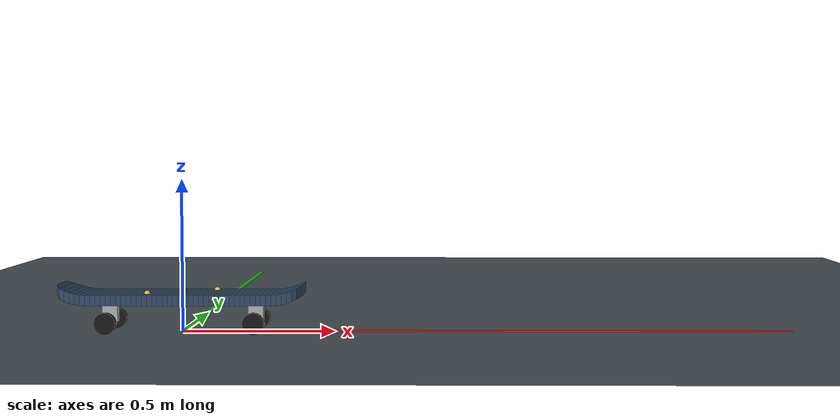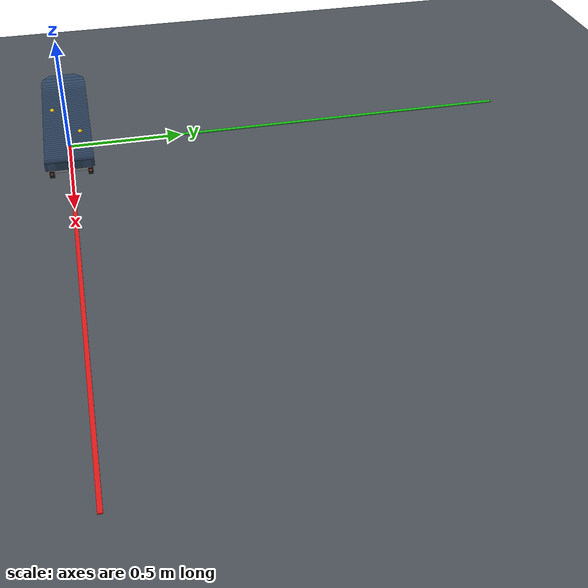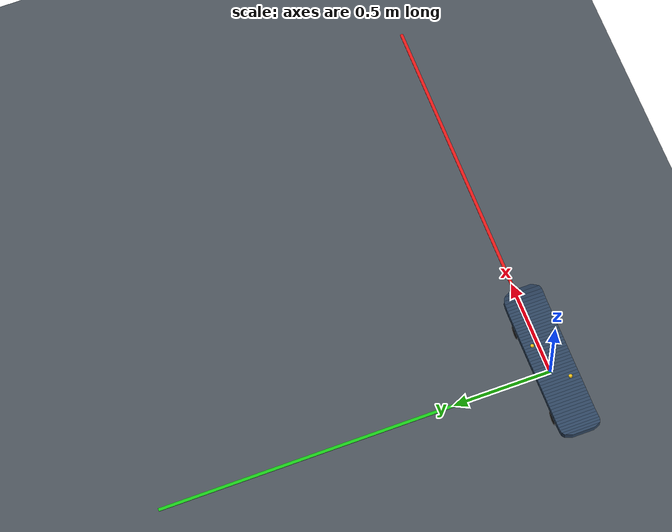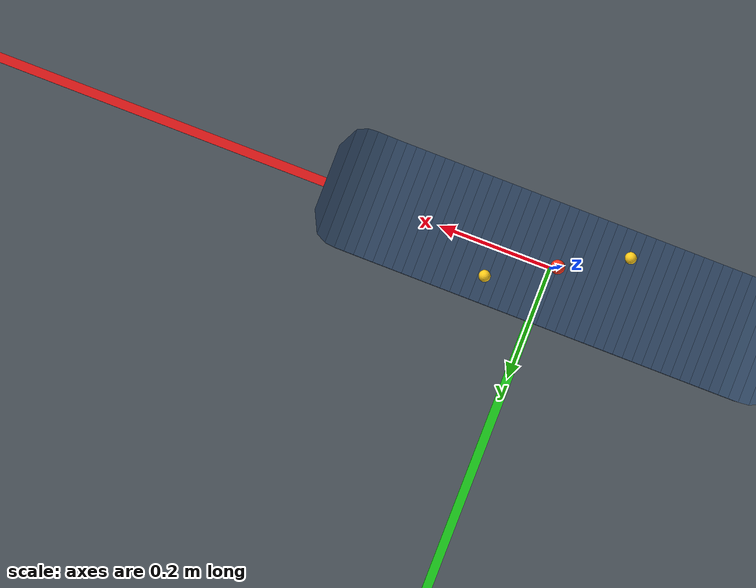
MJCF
<mujoco model="skate-sim-board-standard-truck">
      <compiler angle="radian" coordinate="local"/>
      <option gravity="0 0 -9.81" integrator="implicitfast" timestep=".002"/>
      <visual><headlight diffuse=".8 .8 .8" ambient=".35 .35 .35"/></visual>
      <asset>
        <mesh name="deck_strip_0" vertex="-0.4 -0.0550000011 0.0125 -0.4 -0.0550000011 0.0475 -0.4 0.0550000011 0.0125 -0.4 0.0550000011 0.0475 -0.383333333 -0.0899602949 0.00333333333 -0.383333333 -0.0899602949 0.0383333333 -0.383333333 0.0899602949 0.00333333333 -0.383333333 0.0899602949 0.0383333333"/><mesh name="deck_strip_1" vertex="-0.383333333 -0.0899602949 0.00333333333 -0.383333333 -0.0899602949 0.0383333333 -0.383333333 0.0899602949 0.00333333333 -0.383333333 0.0899602949 0.0383333333 -0.366666667 -0.0984613494 -0.00416666667 -0.366666667 -0.0984613494 0.0308333333 -0.366666667 0.0984613494 -0.00416666667 -0.366666667 0.0984613494 0.0308333333"/><mesh name="deck_strip_2" vertex="-0.366666667 -0.0984613494 -0.00416666667 -0.366666667 -0.0984613494 0.0308333333 -0.366666667 0.0984613494 -0.00416666667 -0.366666667 0.0984613494 0.0308333333 -0.35 -0.1 -0.01 -0.35 -0.1 0.025 -0.35 0.1 -0.01 -0.35 0.1 0.025"/><mesh name="deck_strip_3" vertex="-0.35 -0.1 -0.01 -0.35 -0.1 0.025 -0.35 0.1 -0.01 -0.35 0.1 0.025 -0.333333333 -0.1 -0.0141666667 -0.333333333 -0.1 0.0208333333 -0.333333333 0.1 -0.0141666667 -0.333333333 0.1 0.0208333333"/><mesh name="deck_strip_4" vertex="-0.333333333 -0.1 -0.0141666667 -0.333333333 -0.1 0.0208333333 -0.333333333 0.1 -0.0141666667 -0.333333333 0.1 0.0208333333 -0.316666667 -0.1 -0.0166666667 -0.316666667 -0.1 0.0183333333 -0.316666667 0.1 -0.0166666667 -0.316666667 0.1 0.0183333333"/><mesh name="deck_strip_5" vertex="-0.316666667 -0.1 -0.0166666667 -0.316666667 -0.1 0.0183333333 -0.316666667 0.1 -0.0166666667 -0.316666667 0.1 0.0183333333 -0.3 -0.1 -0.0175 -0.3 -0.1 0.0175 -0.3 0.1 -0.0175 -0.3 0.1 0.0175"/><mesh name="deck_strip_6" vertex="-0.3 -0.1 -0.0175 -0.3 -0.1 0.0175 -0.3 0.1 -0.0175 -0.3 0.1 0.0175 -0.283333333 -0.1 -0.0175 -0.283333333 -0.1 0.0175 -0.283333333 0.1 -0.0175 -0.283333333 0.1 0.0175"/><mesh name="deck_strip_7" vertex="-0.283333333 -0.1 -0.0175 -0.283333333 -0.1 0.0175 -0.283333333 0.1 -0.0175 -0.283333333 0.1 0.0175 -0.266666667 -0.1 -0.0175 -0.266666667 -0.1 0.0175 -0.266666667 0.1 -0.0175 -0.266666667 0.1 0.0175"/><mesh name="deck_strip_8" vertex="-0.266666667 -0.1 -0.0175 -0.266666667 -0.1 0.0175 -0.266666667 0.1 -0.0175 -0.266666667 0.1 0.0175 -0.25 -0.1 -0.0175 -0.25 -0.1 0.0175 -0.25 0.1 -0.0175 -0.25 0.1 0.0175"/><mesh name="deck_strip_9" vertex="-0.25 -0.1 -0.0175 -0.25 -0.1 0.0175 -0.25 0.1 -0.0175 -0.25 0.1 0.0175 -0.233333333 -0.1 -0.0175 -0.233333333 -0.1 0.0175 -0.233333333 0.1 -0.0175 -0.233333333 0.1 0.0175"/><mesh name="deck_strip_10" vertex="-0.233333333 -0.1 -0.0175 -0.233333333 -0.1 0.0175 -0.233333333 0.1 -0.0175 -0.233333333 0.1 0.0175 -0.216666667 -0.1 -0.0175 -0.216666667 -0.1 0.0175 -0.216666667 0.1 -0.0175 -0.216666667 0.1 0.0175"/><mesh name="deck_strip_11" vertex="-0.216666667 -0.1 -0.0175 -0.216666667 -0.1 0.0175 -0.216666667 0.1 -0.0175 -0.216666667 0.1 0.0175 -0.2 -0.1 -0.0175 -0.2 -0.1 0.0175 -0.2 0.1 -0.0175 -0.2 0.1 0.0175"/><mesh name="deck_strip_12" vertex="-0.2 -0.1 -0.0175 -0.2 -0.1 0.0175 -0.2 0.1 -0.0175 -0.2 0.1 0.0175 -0.183333333 -0.1 -0.0175 -0.183333333 -0.1 0.0175 -0.183333333 0.1 -0.0175 -0.183333333 0.1 0.0175"/><mesh name="deck_strip_13" vertex="-0.183333333 -0.1 -0.0175 -0.183333333 -0.1 0.0175 -0.183333333 0.1 -0.0175 -0.183333333 0.1 0.0175 -0.166666667 -0.1 -0.0175 -0.166666667 -0.1 0.0175 -0.166666667 0.1 -0.0175 -0.166666667 0.1 0.0175"/><mesh name="deck_strip_14" vertex="-0.166666667 -0.1 -0.0175 -0.166666667 -0.1 0.0175 -0.166666667 0.1 -0.0175 -0.166666667 0.1 0.0175 -0.15 -0.1 -0.0175 -0.15 -0.1 0.0175 -0.15 0.1 -0.0175 -0.15 0.1 0.0175"/><mesh name="deck_strip_15" vertex="-0.15 -0.1 -0.0175 -0.15 -0.1 0.0175 -0.15 0.1 -0.0175 -0.15 0.1 0.0175 -0.133333333 -0.1 -0.0175 -0.133333333 -0.1 0.0175 -0.133333333 0.1 -0.0175 -0.133333333 0.1 0.0175"/><mesh name="deck_strip_16" vertex="-0.133333333 -0.1 -0.0175 -0.133333333 -0.1 0.0175 -0.133333333 0.1 -0.0175 -0.133333333 0.1 0.0175 -0.116666667 -0.1 -0.0175 -0.116666667 -0.1 0.0175 -0.116666667 0.1 -0.0175 -0.116666667 0.1 0.0175"/><mesh name="deck_strip_17" vertex="-0.116666667 -0.1 -0.0175 -0.116666667 -0.1 0.0175 -0.116666667 0.1 -0.0175 -0.116666667 0.1 0.0175 -0.1 -0.1 -0.0175 -0.1 -0.1 0.0175 -0.1 0.1 -0.0175 -0.1 0.1 0.0175"/><mesh name="deck_strip_18" vertex="-0.1 -0.1 -0.0175 -0.1 -0.1 0.0175 -0.1 0.1 -0.0175 -0.1 0.1 0.0175 -0.0833333333 -0.1 -0.0175 -0.0833333333 -0.1 0.0175 -0.0833333333 0.1 -0.0175 -0.0833333333 0.1 0.0175"/><mesh name="deck_strip_19" vertex="-0.0833333333 -0.1 -0.0175 -0.0833333333 -0.1 0.0175 -0.0833333333 0.1 -0.0175 -0.0833333333 0.1 0.0175 -0.0666666667 -0.1 -0.0175 -0.0666666667 -0.1 0.0175 -0.0666666667 0.1 -0.0175 -0.0666666667 0.1 0.0175"/><mesh name="deck_strip_20" vertex="-0.0666666667 -0.1 -0.0175 -0.0666666667 -0.1 0.0175 -0.0666666667 0.1 -0.0175 -0.0666666667 0.1 0.0175 -0.05 -0.1 -0.0175 -0.05 -0.1 0.0175 -0.05 0.1 -0.0175 -0.05 0.1 0.0175"/><mesh name="deck_strip_21" vertex="-0.05 -0.1 -0.0175 -0.05 -0.1 0.0175 -0.05 0.1 -0.0175 -0.05 0.1 0.0175 -0.0333333333 -0.1 -0.0175 -0.0333333333 -0.1 0.0175 -0.0333333333 0.1 -0.0175 -0.0333333333 0.1 0.0175"/><mesh name="deck_strip_22" vertex="-0.0333333333 -0.1 -0.0175 -0.0333333333 -0.1 0.0175 -0.0333333333 0.1 -0.0175 -0.0333333333 0.1 0.0175 -0.0166666667 -0.1 -0.0175 -0.0166666667 -0.1 0.0175 -0.0166666667 0.1 -0.0175 -0.0166666667 0.1 0.0175"/><mesh name="deck_strip_23" vertex="-0.0166666667 -0.1 -0.0175 -0.0166666667 -0.1 0.0175 -0.0166666667 0.1 -0.0175 -0.0166666667 0.1 0.0175 5.55111512e-17 -0.1 -0.0175 5.55111512e-17 -0.1 0.0175 5.55111512e-17 0.1 -0.0175 5.55111512e-17 0.1 0.0175"/><mesh name="deck_strip_24" vertex="5.55111512e-17 -0.1 -0.0175 5.55111512e-17 -0.1 0.0175 5.55111512e-17 0.1 -0.0175 5.55111512e-17 0.1 0.0175 0.0166666667 -0.1 -0.0175 0.0166666667 -0.1 0.0175 0.0166666667 0.1 -0.0175 0.0166666667 0.1 0.0175"/><mesh name="deck_strip_25" vertex="0.0166666667 -0.1 -0.0175 0.0166666667 -0.1 0.0175 0.0166666667 0.1 -0.0175 0.0166666667 0.1 0.0175 0.0333333333 -0.1 -0.0175 0.0333333333 -0.1 0.0175 0.0333333333 0.1 -0.0175 0.0333333333 0.1 0.0175"/><mesh name="deck_strip_26" vertex="0.0333333333 -0.1 -0.0175 0.0333333333 -0.1 0.0175 0.0333333333 0.1 -0.0175 0.0333333333 0.1 0.0175 0.05 -0.1 -0.0175 0.05 -0.1 0.0175 0.05 0.1 -0.0175 0.05 0.1 0.0175"/><mesh name="deck_strip_27" vertex="0.05 -0.1 -0.0175 0.05 -0.1 0.0175 0.05 0.1 -0.0175 0.05 0.1 0.0175 0.0666666667 -0.1 -0.0175 0.0666666667 -0.1 0.0175 0.0666666667 0.1 -0.0175 0.0666666667 0.1 0.0175"/><mesh name="deck_strip_28" vertex="0.0666666667 -0.1 -0.0175 0.0666666667 -0.1 0.0175 0.0666666667 0.1 -0.0175 0.0666666667 0.1 0.0175 0.0833333333 -0.1 -0.0175 0.0833333333 -0.1 0.0175 0.0833333333 0.1 -0.0175 0.0833333333 0.1 0.0175"/><mesh name="deck_strip_29" vertex="0.0833333333 -0.1 -0.0175 0.0833333333 -0.1 0.0175 0.0833333333 0.1 -0.0175 0.0833333333 0.1 0.0175 0.1 -0.1 -0.0175 0.1 -0.1 0.0175 0.1 0.1 -0.0175 0.1 0.1 0.0175"/><mesh name="deck_strip_30" vertex="0.1 -0.1 -0.0175 0.1 -0.1 0.0175 0.1 0.1 -0.0175 0.1 0.1 0.0175 0.116666667 -0.1 -0.0175 0.116666667 -0.1 0.0175 0.116666667 0.1 -0.0175 0.116666667 0.1 0.0175"/><mesh name="deck_strip_31" vertex="0.116666667 -0.1 -0.0175 0.116666667 -0.1 0.0175 0.116666667 0.1 -0.0175 0.116666667 0.1 0.0175 0.133333333 -0.1 -0.0175 0.133333333 -0.1 0.0175 0.133333333 0.1 -0.0175 0.133333333 0.1 0.0175"/><mesh name="deck_strip_32" vertex="0.133333333 -0.1 -0.0175 0.133333333 -0.1 0.0175 0.133333333 0.1 -0.0175 0.133333333 0.1 0.0175 0.15 -0.1 -0.0175 0.15 -0.1 0.0175 0.15 0.1 -0.0175 0.15 0.1 0.0175"/><mesh name="deck_strip_33" vertex="0.15 -0.1 -0.0175 0.15 -0.1 0.0175 0.15 0.1 -0.0175 0.15 0.1 0.0175 0.166666667 -0.1 -0.0175 0.166666667 -0.1 0.0175 0.166666667 0.1 -0.0175 0.166666667 0.1 0.0175"/><mesh name="deck_strip_34" vertex="0.166666667 -0.1 -0.0175 0.166666667 -0.1 0.0175 0.166666667 0.1 -0.0175 0.166666667 0.1 0.0175 0.183333333 -0.1 -0.0175 0.183333333 -0.1 0.0175 0.183333333 0.1 -0.0175 0.183333333 0.1 0.0175"/><mesh name="deck_strip_35" vertex="0.183333333 -0.1 -0.0175 0.183333333 -0.1 0.0175 0.183333333 0.1 -0.0175 0.183333333 0.1 0.0175 0.2 -0.1 -0.0175 0.2 -0.1 0.0175 0.2 0.1 -0.0175 0.2 0.1 0.0175"/><mesh name="deck_strip_36" vertex="0.2 -0.1 -0.0175 0.2 -0.1 0.0175 0.2 0.1 -0.0175 0.2 0.1 0.0175 0.216666667 -0.1 -0.0175 0.216666667 -0.1 0.0175 0.216666667 0.1 -0.0175 0.216666667 0.1 0.0175"/><mesh name="deck_strip_37" vertex="0.216666667 -0.1 -0.0175 0.216666667 -0.1 0.0175 0.216666667 0.1 -0.0175 0.216666667 0.1 0.0175 0.233333333 -0.1 -0.0175 0.233333333 -0.1 0.0175 0.233333333 0.1 -0.0175 0.233333333 0.1 0.0175"/><mesh name="deck_strip_38" vertex="0.233333333 -0.1 -0.0175 0.233333333 -0.1 0.0175 0.233333333 0.1 -0.0175 0.233333333 0.1 0.0175 0.25 -0.1 -0.0175 0.25 -0.1 0.0175 0.25 0.1 -0.0175 0.25 0.1 0.0175"/><mesh name="deck_strip_39" vertex="0.25 -0.1 -0.0175 0.25 -0.1 0.0175 0.25 0.1 -0.0175 0.25 0.1 0.0175 0.266666667 -0.1 -0.0175 0.266666667 -0.1 0.0175 0.266666667 0.1 -0.0175 0.266666667 0.1 0.0175"/><mesh name="deck_strip_40" vertex="0.266666667 -0.1 -0.0175 0.266666667 -0.1 0.0175 0.266666667 0.1 -0.0175 0.266666667 0.1 0.0175 0.283333333 -0.1 -0.0175 0.283333333 -0.1 0.0175 0.283333333 0.1 -0.0175 0.283333333 0.1 0.0175"/><mesh name="deck_strip_41" vertex="0.283333333 -0.1 -0.0175 0.283333333 -0.1 0.0175 0.283333333 0.1 -0.0175 0.283333333 0.1 0.0175 0.3 -0.1 -0.0175 0.3 -0.1 0.0175 0.3 0.1 -0.0175 0.3 0.1 0.0175"/><mesh name="deck_strip_42" vertex="0.3 -0.1 -0.0175 0.3 -0.1 0.0175 0.3 0.1 -0.0175 0.3 0.1 0.0175 0.316666667 -0.1 -0.0166666667 0.316666667 -0.1 0.0183333333 0.316666667 0.1 -0.0166666667 0.316666667 0.1 0.0183333333"/><mesh name="deck_strip_43" vertex="0.316666667 -0.1 -0.0166666667 0.316666667 -0.1 0.0183333333 0.316666667 0.1 -0.0166666667 0.316666667 0.1 0.0183333333 0.333333333 -0.1 -0.0141666667 0.333333333 -0.1 0.0208333333 0.333333333 0.1 -0.0141666667 0.333333333 0.1 0.0208333333"/><mesh name="deck_strip_44" vertex="0.333333333 -0.1 -0.0141666667 0.333333333 -0.1 0.0208333333 0.333333333 0.1 -0.0141666667 0.333333333 0.1 0.0208333333 0.35 -0.1 -0.01 0.35 -0.1 0.025 0.35 0.1 -0.01 0.35 0.1 0.025"/><mesh name="deck_strip_45" vertex="0.35 -0.1 -0.01 0.35 -0.1 0.025 0.35 0.1 -0.01 0.35 0.1 0.025 0.366666667 -0.0984613494 -0.00416666667 0.366666667 -0.0984613494 0.0308333333 0.366666667 0.0984613494 -0.00416666667 0.366666667 0.0984613494 0.0308333333"/><mesh name="deck_strip_46" vertex="0.366666667 -0.0984613494 -0.00416666667 0.366666667 -0.0984613494 0.0308333333 0.366666667 0.0984613494 -0.00416666667 0.366666667 0.0984613494 0.0308333333 0.383333333 -0.0899602949 0.00333333333 0.383333333 -0.0899602949 0.0383333333 0.383333333 0.0899602949 0.00333333333 0.383333333 0.0899602949 0.0383333333"/><mesh name="deck_strip_47" vertex="0.383333333 -0.0899602949 0.00333333333 0.383333333 -0.0899602949 0.0383333333 0.383333333 0.0899602949 0.00333333333 0.383333333 0.0899602949 0.0383333333 0.4 -0.0550000011 0.0125 0.4 -0.0550000011 0.0475 0.4 0.0550000011 0.0125 0.4 0.0550000011 0.0475"/>
        <texture name="grid" type="2d" builtin="checker" width="256" height="256" rgb1=".2 .23 .26" rgb2=".4 .43 .46"/>
        <material name="floor" texture="grid" texrepeat="10 10" texuniform="true"/>
        <mesh name="ramp" vertex="-.35 -.55 0 .35 -.55 0 -.35 .55 0 .35 .55 0 .35 -.55 .24 .35 .55 .24"/>
      </asset>
      <worldbody>
        <light name="key" pos="0 -2 4" directional="true"/>
        <geom name="ground" type="plane" size="5 5 .1" material="floor"/>
        <geom name="axis_x" type="box" pos="1 0 .002" size="1 .008 .002" rgba=".9 .1 .1 1" contype="0" conaffinity="0"/>
        <geom name="axis_y" type="box" pos="0 1 .002" size=".008 1 .002" rgba=".1 .8 .1 1" contype="0" conaffinity="0"/>

        <body name="deck" pos="0 0 0.112500" euler="0 0 0">
          <freejoint name="deck_free"/>
          <geom name="deck_collision" type="box" size="0.300000 0.100000 0.017500" mass="0" contype="0" conaffinity="0" rgba="0 0 0 0" group="5"/>
          <geom name="deck_strip_0" type="mesh" mesh="deck_strip_0" mass="0.0336985643698" rgba=".18 .27 .38 1"/><geom name="deck_strip_1" type="mesh" mesh="deck_strip_1" mass="0.0438019173599" rgba=".18 .27 .38 1"/><geom name="deck_strip_2" type="mesh" mesh="deck_strip_2" mass="0.046135822963" rgba=".18 .27 .38 1"/><geom name="deck_strip_3" type="mesh" mesh="deck_strip_3" mass="0.0464935093003" rgba=".18 .27 .38 1"/><geom name="deck_strip_4" type="mesh" mesh="deck_strip_4" mass="0.0464935093003" rgba=".18 .27 .38 1"/><geom name="deck_strip_5" type="mesh" mesh="deck_strip_5" mass="0.0464935093003" rgba=".18 .27 .38 1"/><geom name="deck_strip_6" type="mesh" mesh="deck_strip_6" mass="0.0464935093003" rgba=".18 .27 .38 1"/><geom name="deck_strip_7" type="mesh" mesh="deck_strip_7" mass="0.0464935093003" rgba=".18 .27 .38 1"/><geom name="deck_strip_8" type="mesh" mesh="deck_strip_8" mass="0.0464935093003" rgba=".18 .27 .38 1"/><geom name="deck_strip_9" type="mesh" mesh="deck_strip_9" mass="0.0464935093003" rgba=".18 .27 .38 1"/><geom name="deck_strip_10" type="mesh" mesh="deck_strip_10" mass="0.0464935093003" rgba=".18 .27 .38 1"/><geom name="deck_strip_11" type="mesh" mesh="deck_strip_11" mass="0.0464935093003" rgba=".18 .27 .38 1"/><geom name="deck_strip_12" type="mesh" mesh="deck_strip_12" mass="0.0464935093003" rgba=".18 .27 .38 1"/><geom name="deck_strip_13" type="mesh" mesh="deck_strip_13" mass="0.0464935093003" rgba=".18 .27 .38 1"/><geom name="deck_strip_14" type="mesh" mesh="deck_strip_14" mass="0.0464935093003" rgba=".18 .27 .38 1"/><geom name="deck_strip_15" type="mesh" mesh="deck_strip_15" mass="0.0464935093003" rgba=".18 .27 .38 1"/><geom name="deck_strip_16" type="mesh" mesh="deck_strip_16" mass="0.0464935093003" rgba=".18 .27 .38 1"/><geom name="deck_strip_17" type="mesh" mesh="deck_strip_17" mass="0.0464935093003" rgba=".18 .27 .38 1"/><geom name="deck_strip_18" type="mesh" mesh="deck_strip_18" mass="0.0464935093003" rgba=".18 .27 .38 1"/><geom name="deck_strip_19" type="mesh" mesh="deck_strip_19" mass="0.0464935093003" rgba=".18 .27 .38 1"/><geom name="deck_strip_20" type="mesh" mesh="deck_strip_20" mass="0.0464935093003" rgba=".18 .27 .38 1"/><geom name="deck_strip_21" type="mesh" mesh="deck_strip_21" mass="0.0464935093003" rgba=".18 .27 .38 1"/><geom name="deck_strip_22" type="mesh" mesh="deck_strip_22" mass="0.0464935093003" rgba=".18 .27 .38 1"/><geom name="deck_strip_23" type="mesh" mesh="deck_strip_23" mass="0.0464935093003" rgba=".18 .27 .38 1"/><geom name="deck_strip_24" type="mesh" mesh="deck_strip_24" mass="0.0464935093003" rgba=".18 .27 .38 1"/><geom name="deck_strip_25" type="mesh" mesh="deck_strip_25" mass="0.0464935093003" rgba=".18 .27 .38 1"/><geom name="deck_strip_26" type="mesh" mesh="deck_strip_26" mass="0.0464935093003" rgba=".18 .27 .38 1"/><geom name="deck_strip_27" type="mesh" mesh="deck_strip_27" mass="0.0464935093003" rgba=".18 .27 .38 1"/><geom name="deck_strip_28" type="mesh" mesh="deck_strip_28" mass="0.0464935093003" rgba=".18 .27 .38 1"/><geom name="deck_strip_29" type="mesh" mesh="deck_strip_29" mass="0.0464935093003" rgba=".18 .27 .38 1"/><geom name="deck_strip_30" type="mesh" mesh="deck_strip_30" mass="0.0464935093003" rgba=".18 .27 .38 1"/><geom name="deck_strip_31" type="mesh" mesh="deck_strip_31" mass="0.0464935093003" rgba=".18 .27 .38 1"/><geom name="deck_strip_32" type="mesh" mesh="deck_strip_32" mass="0.0464935093003" rgba=".18 .27 .38 1"/><geom name="deck_strip_33" type="mesh" mesh="deck_strip_33" mass="0.0464935093003" rgba=".18 .27 .38 1"/><geom name="deck_strip_34" type="mesh" mesh="deck_strip_34" mass="0.0464935093003" rgba=".18 .27 .38 1"/><geom name="deck_strip_35" type="mesh" mesh="deck_strip_35" mass="0.0464935093003" rgba=".18 .27 .38 1"/><geom name="deck_strip_36" type="mesh" mesh="deck_strip_36" mass="0.0464935093003" rgba=".18 .27 .38 1"/><geom name="deck_strip_37" type="mesh" mesh="deck_strip_37" mass="0.0464935093003" rgba=".18 .27 .38 1"/><geom name="deck_strip_38" type="mesh" mesh="deck_strip_38" mass="0.0464935093003" rgba=".18 .27 .38 1"/><geom name="deck_strip_39" type="mesh" mesh="deck_strip_39" mass="0.0464935093003" rgba=".18 .27 .38 1"/><geom name="deck_strip_40" type="mesh" mesh="deck_strip_40" mass="0.0464935093003" rgba=".18 .27 .38 1"/><geom name="deck_strip_41" type="mesh" mesh="deck_strip_41" mass="0.0464935093003" rgba=".18 .27 .38 1"/><geom name="deck_strip_42" type="mesh" mesh="deck_strip_42" mass="0.0464935093003" rgba=".18 .27 .38 1"/><geom name="deck_strip_43" type="mesh" mesh="deck_strip_43" mass="0.0464935093003" rgba=".18 .27 .38 1"/><geom name="deck_strip_44" type="mesh" mesh="deck_strip_44" mass="0.0464935093003" rgba=".18 .27 .38 1"/><geom name="deck_strip_45" type="mesh" mesh="deck_strip_45" mass="0.046135822963" rgba=".18 .27 .38 1"/><geom name="deck_strip_46" type="mesh" mesh="deck_strip_46" mass="0.0438019173599" rgba=".18 .27 .38 1"/><geom name="deck_strip_47" type="mesh" mesh="deck_strip_47" mass="0.0336985643698" rgba=".18 .27 .38 1"/>
          <site name="deck_top" pos="0 0 0.017500" size=".012" rgba="1 .2 .1 1"/>
          <site name="left_foot_anchor" pos="0.105600 0.056000 0.017500" size=".01" rgba="1 .8 .1 1"/>
          <site name="right_foot_anchor" pos="-0.105600 -0.056000 0.017500" size=".01" rgba="1 .8 .1 1"/>
          <body name="front_truck" pos="0.240000 0 -0.017500">
          <joint name="front_truck_tilt" type="hinge" axis="0.7071068967259818 0 0.7071066656470943" range="-0.35 0.35" stiffness="2.0" damping="0.08"/>
          <geom name="front_truck_collision" type="box" pos="0 0 -.030" size=".025 .012 .030" mass="0.132000" rgba=".65 .65 .68 1"/>
          <geom name="front_axle_collision" type="box" pos="0 0 -.060" size=".012 0.069000 .010" mass="0.088000" rgba=".65 .65 .68 1"/>
          <site name="front_truck_pivot" size=".005" rgba="1 .3 1 1"/>
           <site name="front_truck_axis" type="capsule" fromto="0 0 0 0.06363962070533837 0 0.06363959990823849" size=".002" rgba="1 .3 1 1" group="3"/>
          <body name="front_left" pos="0 0.080000 -0.060000">
      <joint name="front_left_spin" type="hinge" axis="0 1 0" damping=".02"/>
      <geom name="front_left_collision" type="cylinder" fromto="0 -0.011000 0 0 0.011000 0" size="0.035000" mass="0.090000" rgba=".08 .08 .08 1"/>
      <site name="front_left_axle" pos="0 0 0" size=".006" rgba="1 1 0 1"/>
      <site name="front_left_axis" type="capsule" fromto="0 -.04 0 0 .04 0" size=".002" rgba="1 1 0 1" group="3"/>
      <site name="front_left_marker" pos="0.035000 0 0" size=".004" rgba="1 .2 .1 1"/>
    </body><body name="front_right" pos="0 -0.080000 -0.060000">
      <joint name="front_right_spin" type="hinge" axis="0 1 0" damping=".02"/>
      <geom name="front_right_collision" type="cylinder" fromto="0 -0.011000 0 0 0.011000 0" size="0.035000" mass="0.090000" rgba=".08 .08 .08 1"/>
      <site name="front_right_axle" pos="0 0 0" size=".006" rgba="1 1 0 1"/>
      <site name="front_right_axis" type="capsule" fromto="0 -.04 0 0 .04 0" size=".002" rgba="1 1 0 1" group="3"/>
      <site name="front_right_marker" pos="0.035000 0 0" size=".004" rgba="1 .2 .1 1"/>
    </body>
        </body><body name="rear_truck" pos="-0.240000 0 -0.017500">
          <joint name="rear_truck_tilt" type="hinge" axis="0.7071068967259818 0 -0.7071066656470943" range="-0.35 0.35" stiffness="2.0" damping="0.08"/>
          <geom name="rear_truck_collision" type="box" pos="0 0 -.030" size=".025 .012 .030" mass="0.132000" rgba=".65 .65 .68 1"/>
          <geom name="rear_axle_collision" type="box" pos="0 0 -.060" size=".012 0.069000 .010" mass="0.088000" rgba=".65 .65 .68 1"/>
          <site name="rear_truck_pivot" size=".005" rgba="1 .3 1 1"/>
           <site name="rear_truck_axis" type="capsule" fromto="0 0 0 0.06363962070533837 0 -0.06363959990823849" size=".002" rgba="1 .3 1 1" group="3"/>
          <body name="rear_left" pos="0 0.080000 -0.060000">
      <joint name="rear_left_spin" type="hinge" axis="0 1 0" damping=".02"/>
      <geom name="rear_left_collision" type="cylinder" fromto="0 -0.011000 0 0 0.011000 0" size="0.035000" mass="0.090000" rgba=".08 .08 .08 1"/>
      <site name="rear_left_axle" pos="0 0 0" size=".006" rgba="1 1 0 1"/>
      <site name="rear_left_axis" type="capsule" fromto="0 -.04 0 0 .04 0" size=".002" rgba="1 1 0 1" group="3"/>
      <site name="rear_left_marker" pos="0.035000 0 0" size=".004" rgba="1 .2 .1 1"/>
    </body><body name="rear_right" pos="0 -0.080000 -0.060000">
      <joint name="rear_right_spin" type="hinge" axis="0 1 0" damping=".02"/>
      <geom name="rear_right_collision" type="cylinder" fromto="0 -0.011000 0 0 0.011000 0" size="0.035000" mass="0.090000" rgba=".08 .08 .08 1"/>
      <site name="rear_right_axle" pos="0 0 0" size=".006" rgba="1 1 0 1"/>
      <site name="rear_right_axis" type="capsule" fromto="0 -.04 0 0 .04 0" size=".002" rgba="1 1 0 1" group="3"/>
      <site name="rear_right_marker" pos="0.035000 0 0" size=".004" rgba="1 .2 .1 1"/>
    </body>
        </body>
        </body>
      </worldbody>
    </mujoco>
